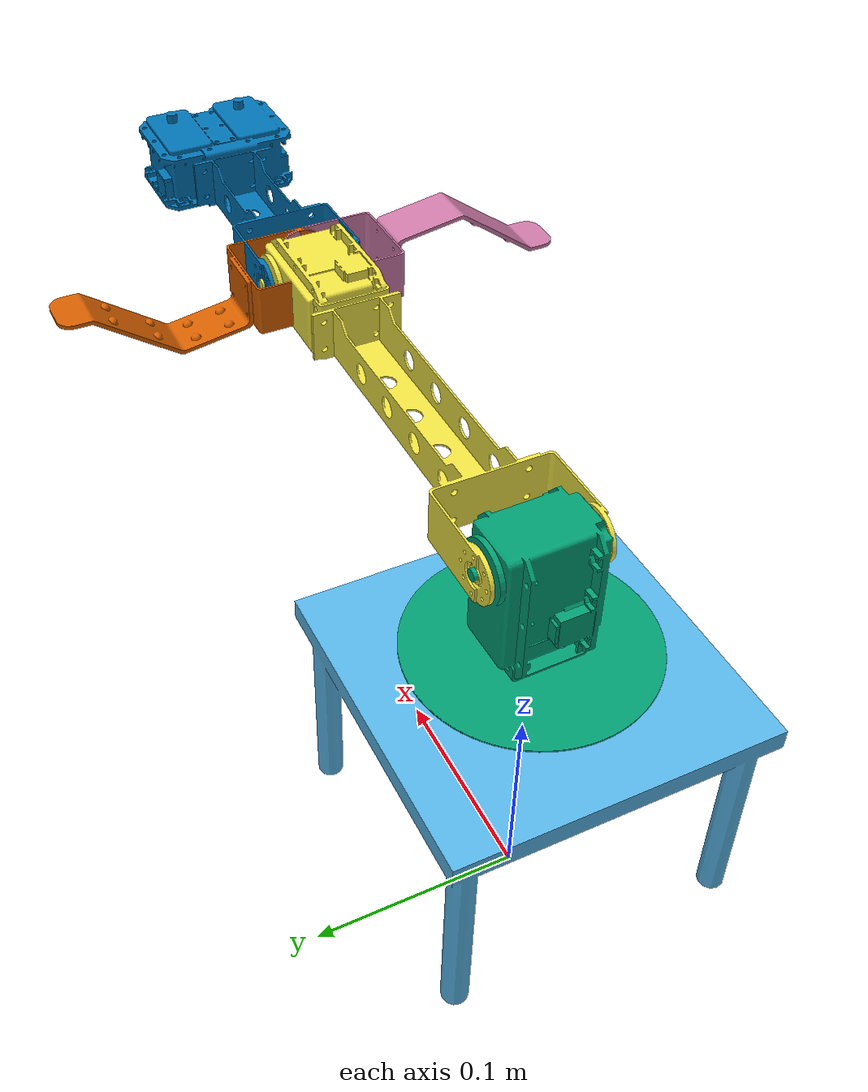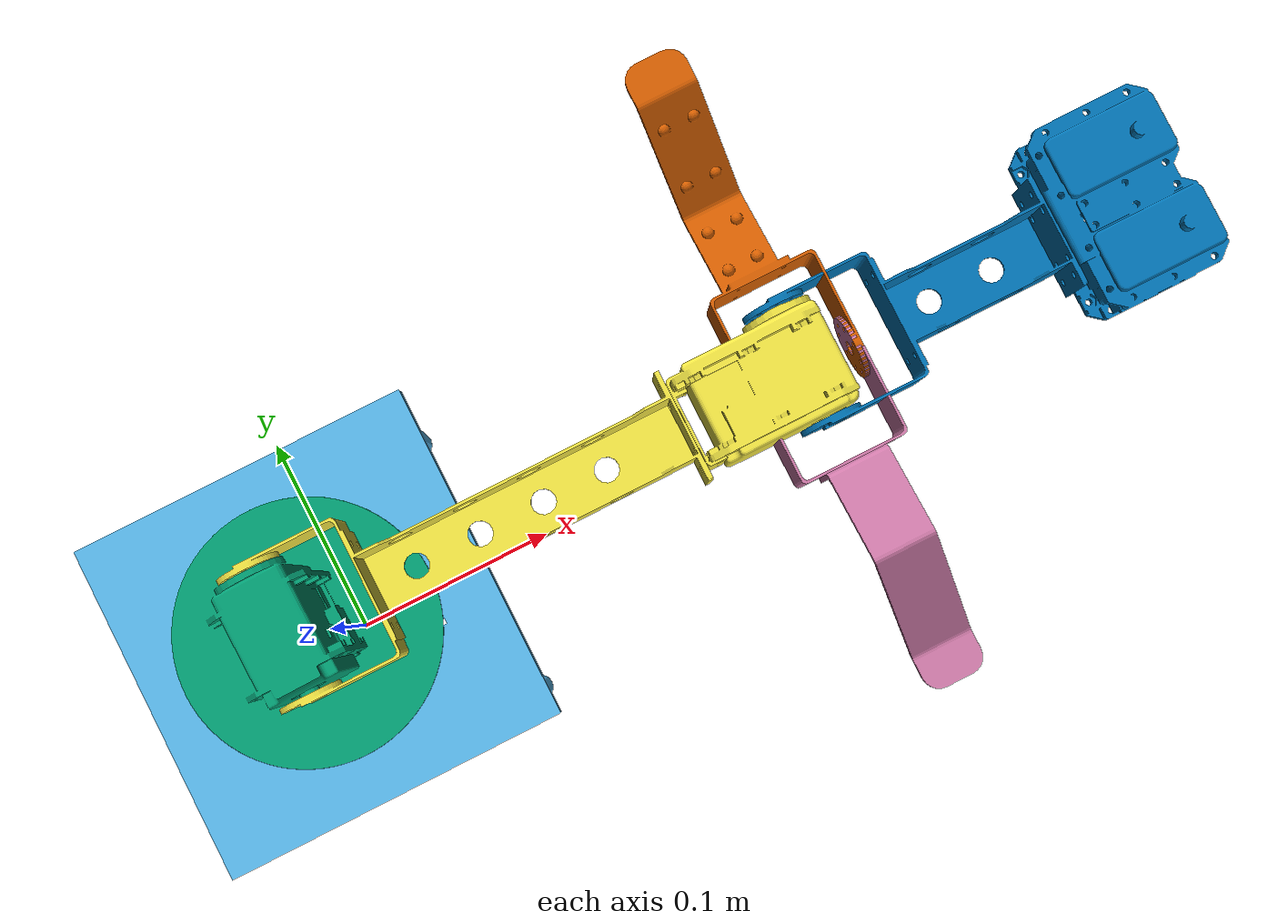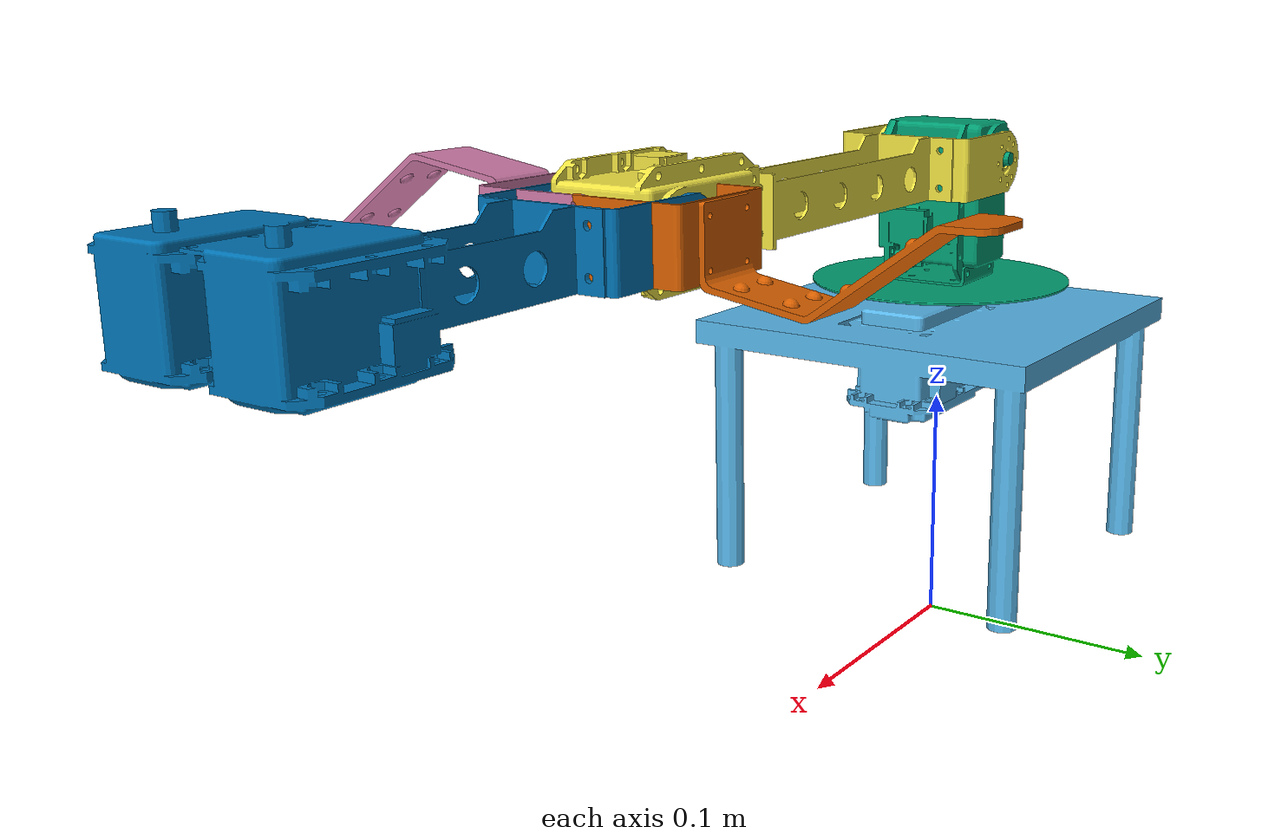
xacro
<?xml version="1.0"?>
<robot name="CrustCrawler" xmlns:xacro="http://www.ros.org/wiki/xacro">
  <xacro:property name="M_pi" value="3.1415" />
  <xacro:property name="LinkWidth" value="0.025" />
  <xacro:property name="LinkHeight" value="0.02" />

  <xacro:property name="offset" value="0.0" />

  <xacro:property name="MotorWidth" value="0.04" />
  <xacro:property name="MotorLength" value="0.055" />
  <xacro:property name="MotorOffset" value="0.04" />

  <xacro:property name="BaseWidth" value="0.15" />

  <xacro:property name="L0" value="0.01" />
  <xacro:property name="L1" value="0.055" />
  <xacro:property name="L2" value="0.22" />
  <xacro:property name="L3" value="0.15" />
  <xacro:property name="Lp" value="0.0" />

  <xacro:property name="Lc" value="0.05875" />
  <xacro:property name="Lc2" value="0.17433" />
  <xacro:property name="Lc3" value="0.12078" />
  <xacro:property name="d3" value="-0.003" />

  <xacro:property name="m1" value="0.22501148645" />
  <xacro:property name="m2" value="0.21285774246" />
  <xacro:property name="m3" value="0.28725035108" />
  <xacro:property name="mp" value="0.0" />

  <!-- Gazebo -->
  <gazebo>
    <plugin name="gazebo_ros_control" filename="libgazebo_ros_control.so">
      <robotNamespace>/crustcrawler</robotNamespace>
    </plugin>

    <plugin name="gazebo_plugin" filename="libgazebo_plugin.so">
    </plugin>

  </gazebo>

  <gazebo reference="link1">
    <selfCollide>true</selfCollide>
  </gazebo>
  <gazebo reference="link2">
    <selfCollide>true</selfCollide>
  </gazebo>
  <gazebo reference="link3">
    <selfCollide>true</selfCollide>
  </gazebo>

  <!-- links, joints and transmissions -->

  <link name="world"/>

  <joint name="world_base" type="fixed">
    <parent link="world"/>
    <child link="base"/>
    <origin xyz = "0 0 0.15" />
  </joint>

  <!-- base link -->

  <link name="base">
    <collision>
      <origin xyz="0 0 -0.015" rpy="0 0 0"/>
      <geometry>
	       <box size="${BaseWidth} ${BaseWidth} 0.01"/>
      </geometry>
    </collision>

    <visual>
      <origin xyz="0 0 ${-L1/2}" rpy="0 0 0"/>
      <geometry>
         <mesh filename="package://crustcrawler_description/meshes/Base.STL"/>
      </geometry>
    </visual>

    <inertial>
      <origin xyz="0 0 0" rpy="0 0 0"/>
      <mass value="${m1}"/>
      <inertia
	  ixx="0.0" ixy="0.0" ixz="0.0"
	  iyy="0.0" iyz="0.0"
	  izz="0.0"/>
    </inertial>
  </link>

  <joint name="joint1" type="continuous">
    <axis xyz="0 0 1"/>
    <!--limit effort="1000.0" lower="${-M_pi}" upper="${M_pi}" velocity="0.5"/ -->
    <parent link="base"/>
    <child link="link1"/>
    <origin xyz="0 0 0" rpy= "0 0 0"/>
    <dynamics damping="0.7"/>
  </joint>

  <!-- link 1 -->

  <link name="link1">
    <collision>
      <origin xyz="0 0 ${L1 / 2}" rpy="0 0 0"/>
      <geometry>
        <box size="${MotorWidth} ${MotorLength} ${L1*1.5}"/>
      </geometry>
    </collision>

    <visual>
      <origin xyz="0 0 ${-L1/2}" rpy="0 0 0"/>
      <geometry>
        <mesh filename="package://crustcrawler_description/meshes/Link1.STL"/>
      </geometry>
    </visual>

    <inertial>
      <origin xyz="0 0 ${Lc}" rpy="0 0 0"/>
      <mass value="${m1}"/>
      <inertia
    	  ixx="0.08410695" ixy="-0.00213140" ixz="-0.00685242"
    	  iyy="0.11802166" iyz="0.00036003"
    	  izz="0.11395469"/>
    </inertial>
  </link>

  <joint name="joint2" type="continuous">
    <origin xyz="0 0 ${L1}" rpy="${M_pi / 2} 0 0"/>
    <axis xyz="0 0 1"/>
    <parent link="link1"/>
    <child link="link2"/>
    <dynamics damping="0.7"/>
  </joint>

  <!-- link 2 -->
  <link name="link2">
    <collision>
      <origin xyz="${L2/2 - MotorOffset/2} 0 0" rpy="0 0 0"/>
      <geometry>
         <box size=" ${L2 - MotorOffset*3} ${LinkWidth} ${LinkHeight}"/>
      </geometry>
    </collision>

    <collision>
      <origin xyz = "${L2 - 0.015} 0 0" />
      <geometry>
         <box size=" ${0.05} ${MotorWidth} ${MotorLength}"/>
      </geometry>
    </collision>

    <visual>
      <origin xyz="0 0 0.002" rpy="0 ${M_pi/2} 0"/>
      <geometry>
	       <mesh filename="package://crustcrawler_description/meshes/Link2.STL"/>
      </geometry>
    </visual>

    <inertial>
      <origin xyz="${Lc2} 0 0" rpy="0 0 0"/>
      <mass value="${m2}"/>
      <inertia
	  ixx="0.63396931" ixy="-0.01273805" ixz="-0.01536619"
	  iyy="0.01536619" iyz="0.26329519"
	  izz="0.44043802"/>
    </inertial>
  </link>

  <joint name="joint3" type="continuous">
    <axis xyz="0 0 1"/>
    <parent link="link2"/>
    <child link="link3"/>
    <origin xyz="${L2} 0 0" rpy="0 0 0"/>
    <dynamics damping="0.7"/>
  </joint>

  <!-- link 3 -->

  <link name="link3">
    <collision>
      <origin xyz="${L3/2} 0 ${d3}" rpy="0 0 0"/>
      <geometry>
        <box size=" ${L3 - MotorOffset*2} ${LinkWidth} ${LinkHeight}"/>
      </geometry>
    </collision>
    <collision>
      <origin xyz="${L3 - 0.01} 0 ${d3}" rpy="0 0 0"/>
      <geometry>
        <box size=" ${0.045} ${MotorLength} ${MotorWidth*2 - 0.005}"/>
      </geometry>
    </collision>

    <visual>
      <origin xyz="0 0 0" rpy="0 ${M_pi/2} 0"/>
      <geometry>
        <mesh filename="package://crustcrawler_description/meshes/Link3.STL"/>
      </geometry>
    </visual>

    <inertial>
      <origin xyz="${Lc3} 0 0 " rpy="0 0 0"/>
      <mass value="${m3}"/>
      <inertia
    ixx="0.25596532" ixy="0.00155757" ixz="-0.01187757"
    iyy="0.32784813" iyz="-0.02519485"
    izz="0.02519485"/>
    </inertial>
  </link>

  <joint name="joint4" type="continuous">
    <axis xyz="0 0 1"/>
    <parent link="link3"/>
    <child link="gripper_left"/>
    <origin xyz="${L3 - 0.003} 0 0.016" rpy="${-M_pi/2} 0 0"/>
    <dynamics damping="0.7"/>
  </joint>

  <joint name="joint5" type="continuous">
    <axis xyz="0 0 1"/>
    <parent link="link3"/>
    <child link="gripper_right"/>
    <origin xyz="${L3 - 0.003} 0 -0.016" rpy="${-M_pi/2} 0 0"/>
    <dynamics damping="0.7"/>
  </joint> -->

  <!-- left gripper -->

  <link name="gripper_left">
    <collision>
      <origin xyz="0 0 1" rpy="0 0 0"/>
      <geometry>
        <box size=" ${LinkWidth} ${LinkWidth} ${LinkWidth}"/>
      </geometry>
    </collision>

    <visual>
      <origin xyz="${-L3 + 0.001} 0.016   0" rpy="${M_pi/2} 0 ${M_pi/2}"/>
      <geometry>
        <mesh filename="package://crustcrawler_description/meshes/Grip.STL"/>
      </geometry>
    </visual>

    <inertial>
      <origin xyz="0 0 0 " rpy="0 0 0"/>
      <mass value="0.001"/>
      <inertia
    ixx="0.0" ixy="0.0" ixz="0.0"
    iyy="0.0" iyz="0.0"
    izz="0.0"/>
    </inertial>
  </link>

  <!-- right gripper -->

  <link name="gripper_right">
    <collision>
      <origin xyz="0 0 1" rpy="0 0 0"/>
      <geometry>
        <box size=" ${LinkWidth} ${LinkWidth} ${LinkWidth}"/>
      </geometry>
    </collision>

    <visual>
      <origin xyz="${-L3 + 0.001} -0.016  0" rpy="${-M_pi/2} 0 ${-M_pi/2}"/>
      <geometry>
        <mesh filename="package://crustcrawler_description/meshes/Grip.STL"/>
      </geometry>
    </visual>

    <inertial>
      <origin xyz="0 0 0 " rpy="0 0 0"/>
      <mass value="0.001"/>
      <inertia
    ixx="0.0" ixy="0.0" ixz="0.0"
    iyy="0.0" iyz="0.0"
    izz="0.0"/>
    </inertial>
  </link>

</robot>
